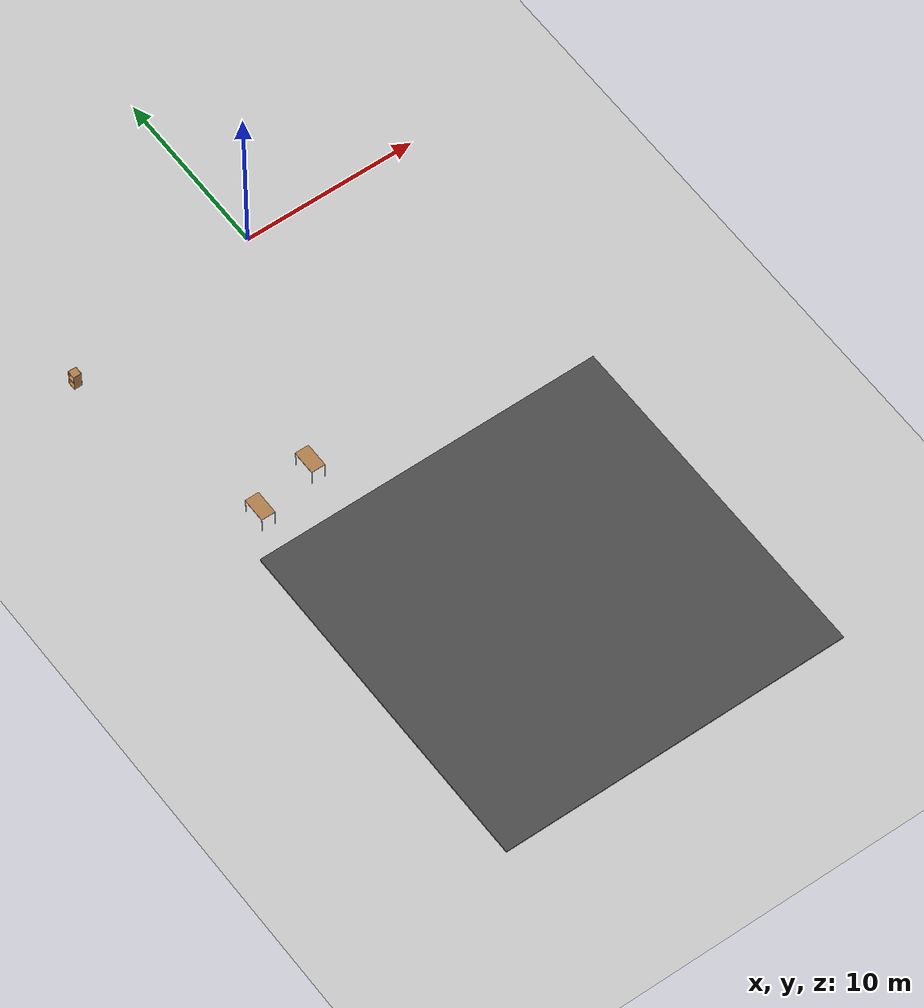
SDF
<sdf version="1.6">
 <world name="default">
  <model name="ground_plane">
   <static>1</static>
   <link name="link">
    <collision name="collision">
     <geometry><plane><normal>0 0 1</normal><size>100 100</size></plane></geometry>
     <surface><friction><ode><mu>100</mu><mu2>50</mu2></ode></friction></surface>
    </collision>
    <visual name="visual">
     <cast_shadows>0</cast_shadows>
     <geometry><plane><normal>0 0 1</normal><size>100 100</size></plane></geometry>
     <material>
      <script><uri>file://media/materials/scripts/gazebo.material</uri><name>Gazebo/Grey</name></script>
     </material>
    </visual>
   </link>
  </model>
  <model name="table_0">
   <static>0</static>
   <link name="link">
    <collision name="surface">
     <pose>0 0 1 0 -0 0</pose>
     <geometry><box><size>1.5 0.8 0.03</size></box></geometry>
     <surface><friction><ode><mu>0.6</mu><mu2>0.6</mu2></ode></friction></surface>
    </collision>
    <visual name="visual1">
     <pose>0 0 1 0 -0 0</pose>
     <geometry><box><size>1.4 0.8 0.04</size></box></geometry>
     <material>
      <script><uri>file://media/materials/scripts/gazebo.material</uri><name>Gazebo/Wood</name></script>
     </material>
    </visual>
    <collision name="front_left_leg">
     <pose>0.68 0.38 0.5 0 -0 0</pose>
     <geometry><cylinder><radius>0.02</radius><length>1</length></cylinder></geometry>
    </collision>
    <visual name="front_left_leg">
     <pose>0.68 0.38 0.5 0 -0 0</pose>
     <geometry><cylinder><radius>0.02</radius><length>1</length></cylinder></geometry>
     <material>
      <script><uri>file://media/materials/scripts/gazebo.material</uri><name>Gazebo/Grey</name></script>
     </material>
    </visual>
    <collision name="front_right_leg">
     <pose>0.68 -0.38 0.5 0 -0 0</pose>
     <geometry><cylinder><radius>0.02</radius><length>1</length></cylinder></geometry>
    </collision>
    <visual name="front_right_leg">
     <pose>0.68 -0.38 0.5 0 -0 0</pose>
     <geometry><cylinder><radius>0.02</radius><length>1</length></cylinder></geometry>
     <material>
      <script><uri>file://media/materials/scripts/gazebo.material</uri><name>Gazebo/Grey</name></script>
     </material>
    </visual>
    <collision name="back_right_leg">
     <pose>-0.68 -0.38 0.5 0 -0 0</pose>
     <geometry><cylinder><radius>0.02</radius><length>1</length></cylinder></geometry>
    </collision>
    <visual name="back_right_leg">
     <pose>-0.68 -0.38 0.5 0 -0 0</pose>
     <geometry><cylinder><radius>0.02</radius><length>1</length></cylinder></geometry>
     <material>
      <script><uri>file://media/materials/scripts/gazebo.material</uri><name>Gazebo/Grey</name></script>
     </material>
    </visual>
    <collision name="back_left_leg">
     <pose>-0.68 0.38 0.5 0 -0 0</pose>
     <geometry><cylinder><radius>0.02</radius><length>1</length></cylinder></geometry>
    </collision>
    <visual name="back_left_leg">
     <pose>-0.68 0.38 0.5 0 -0 0</pose>
     <geometry><cylinder><radius>0.02</radius><length>1</length></cylinder></geometry>
     <material>
      <script><uri>file://media/materials/scripts/gazebo.material</uri><name>Gazebo/Grey</name></script>
     </material>
    </visual>
    <inertial>
     <inertia><ixx>1</ixx><ixy>0</ixy><ixz>0</ixz><iyy>1</iyy><iyz>0</iyz><izz>1</izz></inertia>
     <mass>1</mass>
    </inertial>
   </link>
   <pose>-5.39517 -12.9319 0 0 -0 1.57079</pose>
  </model>
  <model name="table_0_clone_0_clone_0_clone">
   <static>0</static>
   <link name="link">
    <collision name="surface">
     <pose>0 0 1 0 -0 0</pose>
     <geometry><box><size>1.5 0.8 0.03</size></box></geometry>
     <surface><friction><ode><mu>0.6</mu><mu2>0.6</mu2></ode></friction></surface>
    </collision>
    <visual name="visual1">
     <pose>0 0 1 0 -0 0</pose>
     <geometry><box><size>1.4 0.8 0.04</size></box></geometry>
     <material>
      <script><uri>file://media/materials/scripts/gazebo.material</uri><name>Gazebo/Wood</name></script>
     </material>
    </visual>
    <collision name="front_left_leg">
     <pose>0.68 0.38 0.5 0 -0 0</pose>
     <geometry><cylinder><radius>0.02</radius><length>1</length></cylinder></geometry>
    </collision>
    <visual name="front_left_leg">
     <pose>0.68 0.38 0.5 0 -0 0</pose>
     <geometry><cylinder><radius>0.02</radius><length>1</length></cylinder></geometry>
     <material>
      <script><uri>file://media/materials/scripts/gazebo.material</uri><name>Gazebo/Grey</name></script>
     </material>
    </visual>
    <collision name="front_right_leg">
     <pose>0.68 -0.38 0.5 0 -0 0</pose>
     <geometry><cylinder><radius>0.02</radius><length>1</length></cylinder></geometry>
    </collision>
    <visual name="front_right_leg">
     <pose>0.68 -0.38 0.5 0 -0 0</pose>
     <geometry><cylinder><radius>0.02</radius><length>1</length></cylinder></geometry>
     <material>
      <script><uri>file://media/materials/scripts/gazebo.material</uri><name>Gazebo/Grey</name></script>
     </material>
    </visual>
    <collision name="back_right_leg">
     <pose>-0.68 -0.38 0.5 0 -0 0</pose>
     <geometry><cylinder><radius>0.02</radius><length>1</length></cylinder></geometry>
    </collision>
    <visual name="back_right_leg">
     <pose>-0.68 -0.38 0.5 0 -0 0</pose>
     <geometry><cylinder><radius>0.02</radius><length>1</length></cylinder></geometry>
     <material>
      <script><uri>file://media/materials/scripts/gazebo.material</uri><name>Gazebo/Grey</name></script>
     </material>
    </visual>
    <collision name="back_left_leg">
     <pose>-0.68 0.38 0.5 0 -0 0</pose>
     <geometry><cylinder><radius>0.02</radius><length>1</length></cylinder></geometry>
    </collision>
    <visual name="back_left_leg">
     <pose>-0.68 0.38 0.5 0 -0 0</pose>
     <geometry><cylinder><radius>0.02</radius><length>1</length></cylinder></geometry>
     <material>
      <script><uri>file://media/materials/scripts/gazebo.material</uri><name>Gazebo/Grey</name></script>
     </material>
    </visual>
    <inertial>
     <inertia><ixx>1</ixx><ixy>0</ixy><ixz>0</ixz><iyy>1</iyy><iyz>0</iyz><izz>1</izz></inertia>
     <mass>1</mass>
    </inertial>
   </link>
   <pose>-8.91999 -13.7316 0 0 -0 1.57</pose>
  </model>
  <model name="cabinet">
   <static>1</static>
   <link name="cabinet_bottom_plate">
    <inertial>
     <pose>0 0 -1 0 -0 0</pose>
     <inertia><ixx>2.05</ixx><ixy>0</ixy><ixz>0</ixz><iyy>2.05</iyy><iyz>0</iyz><izz>2.05</izz></inertia>
     <mass>25</mass>
    </inertial>
    <collision name="cabinet_bottom_plate_geom">
     <pose>0 0 0.01 0 -0 0</pose>
     <geometry><box><size>0.45 0.45 0.02</size></box></geometry>
    </collision>
    <visual name="cabinet_bottom_plate_geom_visual">
     <pose>0 0 0.01 0 -0 0</pose>
     <geometry><box><size>0.45 0.45 0.02</size></box></geometry>
     <material>
      <script><uri>file://media/materials/scripts/gazebo.material</uri><name>Gazebo/Wood</name></script>
     </material>
    </visual>
    <collision name="cabinet_bottom_plate_geom_cabinet_back_plate">
     <pose>0.235 0 0.51 0 -0 0</pose>
     <geometry><box><size>0.02 0.45 1.02</size></box></geometry>
    </collision>
    <visual name="cabinet_bottom_plate_geom_cabinet_back_plate_visual">
     <pose>0.235 0 0.51 0 -0 0</pose>
     <geometry><box><size>0.02 0.45 1.02</size></box></geometry>
     <material>
      <script><uri>file://media/materials/scripts/gazebo.material</uri><name>Gazebo/Wood</name></script>
     </material>
    </visual>
    <collision name="cabinet_bottom_plate_geom_cabinet_left_plate">
     <pose>0 0.235 0.51 0 -0 0</pose>
     <geometry><box><size>0.45 0.02 1.02</size></box></geometry>
    </collision>
    <visual name="cabinet_bottom_plate_geom_cabinet_left_plate_visual">
     <pose>0 0.235 0.51 0 -0 0</pose>
     <geometry><box><size>0.45 0.02 1.02</size></box></geometry>
     <material>
      <script><uri>file://media/materials/scripts/gazebo.material</uri><name>Gazebo/Wood</name></script>
     </material>
    </visual>
    <collision name="cabinet_bottom_plate_geom_cabinet_middle_plate">
     <pose>0 0 0.51 0 -0 0</pose>
     <geometry><box><size>0.45 0.45 0.02</size></box></geometry>
    </collision>
    <visual name="cabinet_bottom_plate_geom_cabinet_middle_plate_visual">
     <pose>0 0 0.51 0 -0 0</pose>
     <geometry><box><size>0.45 0.45 0.02</size></box></geometry>
     <material>
      <script><uri>file://media/materials/scripts/gazebo.material</uri><name>Gazebo/Wood</name></script>
     </material>
    </visual>
    <collision name="cabinet_bottom_plate_geom_cabinet_right_plate">
     <pose>0 -0.235 0.51 0 -0 0</pose>
     <geometry><box><size>0.45 0.02 1.02</size></box></geometry>
    </collision>
    <visual name="cabinet_bottom_plate_geom_cabinet_right_plate_visual">
     <pose>0 -0.235 0.51 0 -0 0</pose>
     <geometry><box><size>0.45 0.02 1.02</size></box></geometry>
     <material>
      <script><uri>file://media/materials/scripts/gazebo.material</uri><name>Gazebo/Wood</name></script>
     </material>
    </visual>
    <collision name="cabinet_bottom_plate_geom_cabinet_top_plate">
     <pose>0 0 1.01 0 -0 0</pose>
     <geometry><box><size>0.45 0.45 0.02</size></box></geometry>
    </collision>
    <visual name="cabinet_bottom_plate_geom_cabinet_top_plate_visual">
     <pose>0 0 1.01 0 -0 0</pose>
     <geometry><box><size>0.45 0.45 0.02</size></box></geometry>
     <material>
      <script><uri>file://media/materials/scripts/gazebo.material</uri><name>Gazebo/Wood</name></script>
     </material>
    </visual>
   </link>
   <pose>-11.7697 -2.07694 0 0 -0 0</pose>
  </model>
  <model name="asphalt_plane">
   <static>1</static>
   <link name="link">
    <collision name="collision"><geometry><box><size>20 20 0.1</size></box></geometry></collision>
    <visual name="visual">
     <cast_shadows>0</cast_shadows>
     <geometry><box><size>20 20 0.1</size></box></geometry>
     <material>
      <script>
       <uri>model://asphalt_plane/materials/scripts</uri>
       <uri>model://asphalt_plane/materials/textures</uri>
       <name>vrc/asphalt</name>
      </script>
     </material>
    </visual>
   </link>
   <pose>-0.343897 -25.6982 0 0 -0 0</pose>
  </model>
 </world>
</sdf>
